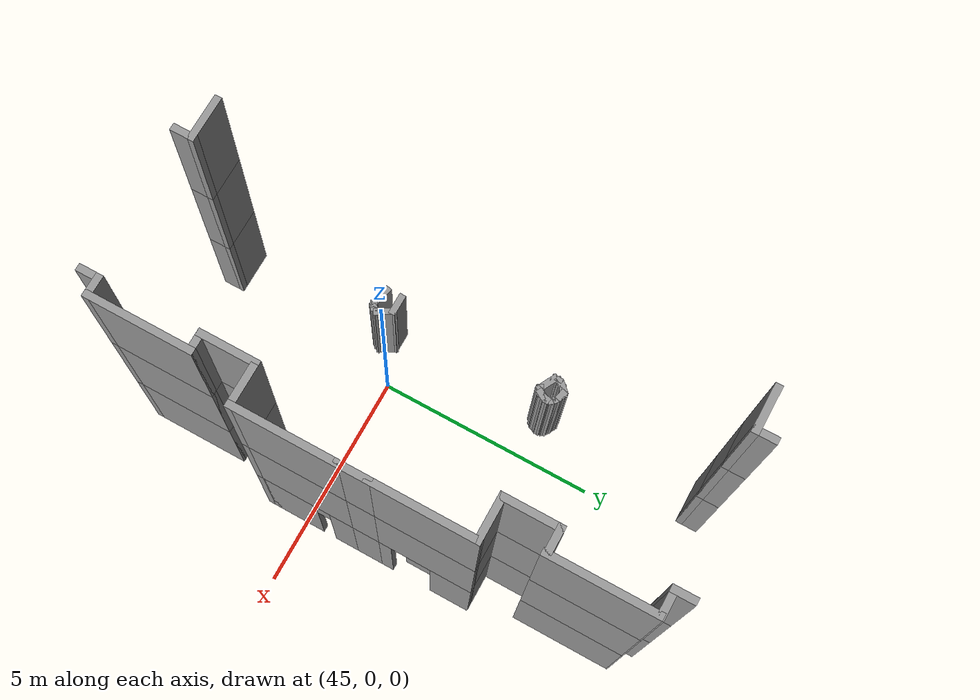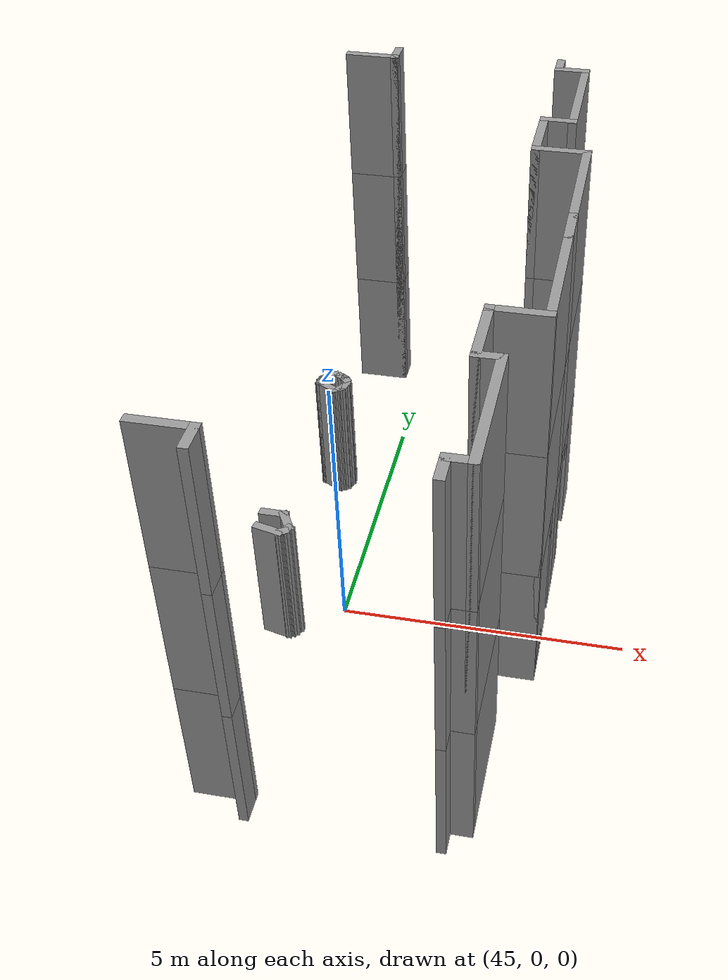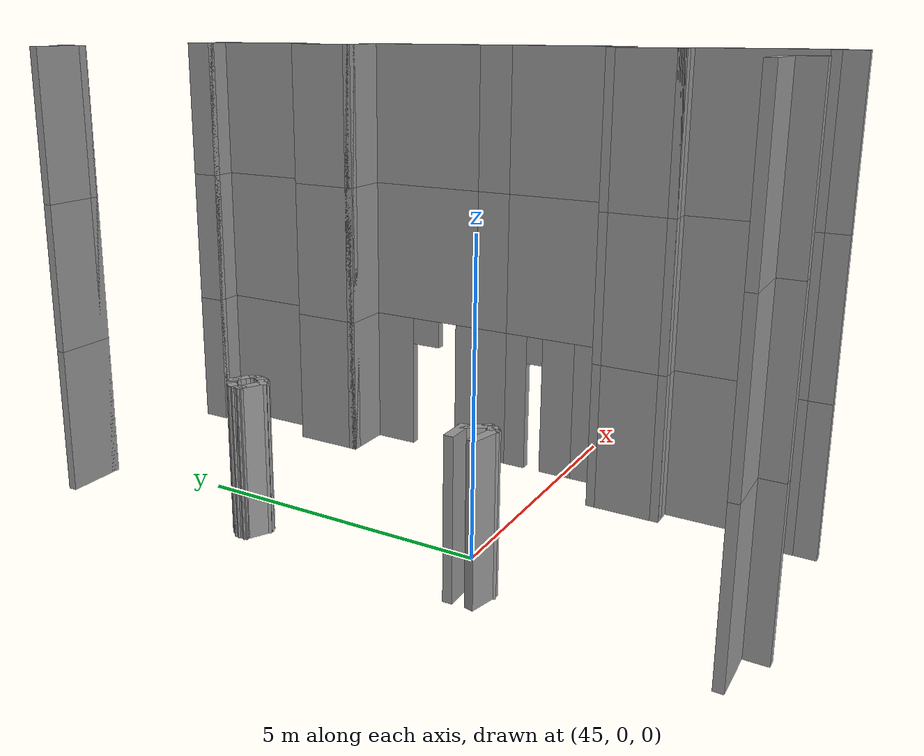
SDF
<sdf version="1.7">
 <model name="mapagazebo">
  <pose>-4.67869 9.01252 0 0 -0 0</pose>
  <link name="Wall_1187">
   <collision name="Wall_1187_Collision">
    <geometry><box><size>1 0.15 2.5</size></box></geometry>
    <pose>0 0 1.25 0 -0 0</pose>
   </collision>
   <visual name="Wall_1187_Visual">
    <pose>0 0 1.25 0 -0 0</pose>
    <geometry><box><size>1 0.15 2.5</size></box></geometry>
    <material>
     <script><uri>file://media/materials/scripts/gazebo.material</uri><name>Gazebo/Grey</name></script>
     <ambient>1 1 1 1</ambient>
    </material>
    <meta><layer>1</layer></meta>
   </visual>
   <pose>48.7962 -1.8985 2.5 0 -0 0</pose>
  </link>
  <link name="Wall_1188">
   <collision name="Wall_1188_Collision">
    <geometry><box><size>0.5 0.15 2.5</size></box></geometry>
    <pose>0 0 1.25 0 -0 0</pose>
   </collision>
   <visual name="Wall_1188_Visual">
    <pose>0 0 1.25 0 -0 0</pose>
    <geometry><box><size>0.5 0.15 2.5</size></box></geometry>
    <material>
     <script><uri>file://media/materials/scripts/gazebo.material</uri><name>Gazebo/Grey</name></script>
     <ambient>1 1 1 1</ambient>
    </material>
    <meta><layer>1</layer></meta>
   </visual>
   <pose>49.2212 -1.7235 2.5 0 -0 1.5708</pose>
  </link>
  <link name="Wall_1190">
   <collision name="Wall_1190_Collision">
    <geometry><box><size>0.5 0.15 2.5</size></box></geometry>
    <pose>0 0 1.25 0 -0 0</pose>
   </collision>
   <visual name="Wall_1190_Visual">
    <pose>0 0 1.25 0 -0 0</pose>
    <geometry><box><size>0.5 0.15 2.5</size></box></geometry>
    <material>
     <script><uri>file://media/materials/scripts/gazebo.material</uri><name>Gazebo/Grey</name></script>
     <ambient>1 1 1 1</ambient>
    </material>
    <meta><layer>1</layer></meta>
   </visual>
   <pose>52.3212 -1.7235 2.5 0 -0 -1.5708</pose>
  </link>
  <link name="Wall_1191">
   <collision name="Wall_1191_Collision">
    <geometry><box><size>0.642964 0.15 2.5</size></box></geometry>
    <pose>0 0 1.25 0 -0 0</pose>
   </collision>
   <visual name="Wall_1191_Visual">
    <pose>0 0 1.25 0 -0 0</pose>
    <geometry><box><size>0.642964 0.15 2.5</size></box></geometry>
    <material>
     <script><uri>file://media/materials/scripts/gazebo.material</uri><name>Gazebo/Grey</name></script>
     <ambient>1 1 1 1</ambient>
    </material>
    <meta><layer>1</layer></meta>
   </visual>
   <pose>52.5677 -1.8985 2.5 0 -0 0</pose>
  </link>
  <link name="Wall_1192">
   <collision name="Wall_1192_Collision">
    <geometry><box><size>2.25 0.15 2.5</size></box></geometry>
    <pose>0 0 1.25 0 -0 0</pose>
   </collision>
   <visual name="Wall_1192_Visual">
    <pose>0 0 1.25 0 -0 0</pose>
    <geometry><box><size>2.25 0.15 2.5</size></box></geometry>
    <material>
     <script><uri>file://media/materials/scripts/gazebo.material</uri><name>Gazebo/Grey</name></script>
     <ambient>1 1 1 1</ambient>
    </material>
    <meta><layer>1</layer></meta>
   </visual>
   <pose>52.8142 -2.97233 2.5 0 -0 -1.5708</pose>
  </link>
  <link name="Wall_1193">
   <collision name="Wall_1193_Collision">
    <geometry><box><size>0.642964 0.15 2.5</size></box></geometry>
    <pose>0 0 1.25 0 -0 0</pose>
   </collision>
   <visual name="Wall_1193_Visual">
    <pose>0 0 1.25 0 -0 0</pose>
    <geometry><box><size>0.642964 0.15 2.5</size></box></geometry>
    <material>
     <script><uri>file://media/materials/scripts/gazebo.material</uri><name>Gazebo/Grey</name></script>
     <ambient>1 1 1 1</ambient>
    </material>
    <meta><layer>1</layer></meta>
   </visual>
   <pose>52.5677 -3.9985 2.5 0 -0 3.14159</pose>
  </link>
  <link name="Wall_1194">
   <collision name="Wall_1194_Collision">
    <geometry><box><size>1.25 0.15 2.5</size></box></geometry>
    <pose>0 0 1.25 0 -0 0</pose>
   </collision>
   <visual name="Wall_1194_Visual">
    <pose>0 0 1.25 0 -0 0</pose>
    <geometry><box><size>1.25 0.15 2.5</size></box></geometry>
    <material>
     <script><uri>file://media/materials/scripts/gazebo.material</uri><name>Gazebo/Grey</name></script>
     <ambient>1 1 1 1</ambient>
    </material>
    <meta><layer>1</layer></meta>
   </visual>
   <pose>52.3212 -4.5485 2.5 0 -0 -1.5708</pose>
  </link>
  <link name="Wall_1195">
   <collision name="Wall_1195_Collision">
    <geometry><box><size>1 0.15 2.5</size></box></geometry>
    <pose>0 0 1.25 0 -0 0</pose>
   </collision>
   <visual name="Wall_1195_Visual">
    <pose>0 0 1.25 0 -0 0</pose>
    <geometry><box><size>1 0.15 2.5</size></box></geometry>
    <material>
     <script><uri>file://media/materials/scripts/gazebo.material</uri><name>Gazebo/Grey</name></script>
     <ambient>1 1 1 1</ambient>
    </material>
    <meta><layer>1</layer></meta>
   </visual>
   <pose>52.7462 -5.0985 2.5 0 -0 0</pose>
  </link>
  <link name="Wall_1196">
   <collision name="Wall_1196_Collision">
    <geometry><box><size>2.25 0.15 2.5</size></box></geometry>
    <pose>0 0 1.25 0 -0 0</pose>
   </collision>
   <visual name="Wall_1196_Visual">
    <pose>0 0 1.25 0 -0 0</pose>
    <geometry><box><size>2.25 0.15 2.5</size></box></geometry>
    <material>
     <script><uri>file://media/materials/scripts/gazebo.material</uri><name>Gazebo/Grey</name></script>
     <ambient>1 1 1 1</ambient>
    </material>
    <meta><layer>1</layer></meta>
   </visual>
   <pose>53.1712 -6.1485 2.5 0 -0 -1.5708</pose>
  </link>
  <link name="Wall_1197">
   <collision name="Wall_1197_Collision">
    <geometry><box><size>0.75 0.15 2.5</size></box></geometry>
    <pose>0 0 1.25 0 -0 0</pose>
   </collision>
   <visual name="Wall_1197_Visual">
    <pose>0 0 1.25 0 -0 0</pose>
    <geometry><box><size>0.75 0.15 2.5</size></box></geometry>
    <material>
     <script><uri>file://media/materials/scripts/gazebo.material</uri><name>Gazebo/Grey</name></script>
     <ambient>1 1 1 1</ambient>
    </material>
    <meta><layer>1</layer></meta>
   </visual>
   <pose>53.1712 -7.4985 2.5 0 -0 -1.5708</pose>
  </link>
  <link name="Wall_1198">
   <collision name="Wall_1198_Collision">
    <geometry><box><size>2.25 0.15 2.5</size></box></geometry>
    <pose>0 0 1.25 0 -0 0</pose>
   </collision>
   <visual name="Wall_1198_Visual">
    <pose>0 0 1.25 0 -0 0</pose>
    <geometry><box><size>2.25 0.15 2.5</size></box></geometry>
    <material>
     <script><uri>file://media/materials/scripts/gazebo.material</uri><name>Gazebo/Grey</name></script>
     <ambient>1 1 1 1</ambient>
    </material>
    <meta><layer>1</layer></meta>
   </visual>
   <pose>53.1712 -8.8485 2.5 0 -0 -1.5708</pose>
  </link>
  <link name="Wall_1199">
   <collision name="Wall_1199_Collision">
    <geometry><box><size>1 0.15 2.5</size></box></geometry>
    <pose>0 0 1.25 0 -0 0</pose>
   </collision>
   <visual name="Wall_1199_Visual">
    <pose>0 0 1.25 0 -0 0</pose>
    <geometry><box><size>1 0.15 2.5</size></box></geometry>
    <material>
     <script><uri>file://media/materials/scripts/gazebo.material</uri><name>Gazebo/Grey</name></script>
     <ambient>1 1 1 1</ambient>
    </material>
    <meta><layer>1</layer></meta>
   </visual>
   <pose>52.7462 -9.8985 2.5 0 -0 3.14159</pose>
  </link>
  <link name="Wall_1200">
   <collision name="Wall_1200_Collision">
    <geometry><box><size>1.25 0.15 2.5</size></box></geometry>
    <pose>0 0 1.25 0 -0 0</pose>
   </collision>
   <visual name="Wall_1200_Visual">
    <pose>0 0 1.25 0 -0 0</pose>
    <geometry><box><size>1.25 0.15 2.5</size></box></geometry>
    <material>
     <script><uri>file://media/materials/scripts/gazebo.material</uri><name>Gazebo/Grey</name></script>
     <ambient>1 1 1 1</ambient>
    </material>
    <meta><layer>1</layer></meta>
   </visual>
   <pose>52.3212 -10.4485 2.5 0 -0 -1.5708</pose>
  </link>
  <link name="Wall_1201">
   <collision name="Wall_1201_Collision">
    <geometry><box><size>0.5 0.15 2.5</size></box></geometry>
    <pose>0 0 1.25 0 -0 0</pose>
   </collision>
   <visual name="Wall_1201_Visual">
    <pose>0 0 1.25 0 -0 0</pose>
    <geometry><box><size>0.5 0.15 2.5</size></box></geometry>
    <material>
     <script><uri>file://media/materials/scripts/gazebo.material</uri><name>Gazebo/Grey</name></script>
     <ambient>1 1 1 1</ambient>
    </material>
    <meta><layer>1</layer></meta>
   </visual>
   <pose>52.4962 -10.9985 2.5 0 -0 0</pose>
  </link>
  <link name="Wall_1202">
   <collision name="Wall_1202_Collision">
    <geometry><box><size>2.25 0.15 2.5</size></box></geometry>
    <pose>0 0 1.25 0 -0 0</pose>
   </collision>
   <visual name="Wall_1202_Visual">
    <pose>0 0 1.25 0 -0 0</pose>
    <geometry><box><size>2.25 0.15 2.5</size></box></geometry>
    <material>
     <script><uri>file://media/materials/scripts/gazebo.material</uri><name>Gazebo/Grey</name></script>
     <ambient>1 1 1 1</ambient>
    </material>
    <meta><layer>1</layer></meta>
   </visual>
   <pose>52.6712 -12.0485 2.5 0 -0 -1.5708</pose>
  </link>
  <link name="Wall_1203">
   <collision name="Wall_1203_Collision">
    <geometry><box><size>0.5 0.15 2.5</size></box></geometry>
    <pose>0 0 1.25 0 -0 0</pose>
   </collision>
   <visual name="Wall_1203_Visual">
    <pose>0 0 1.25 0 -0 0</pose>
    <geometry><box><size>0.5 0.15 2.5</size></box></geometry>
    <material>
     <script><uri>file://media/materials/scripts/gazebo.material</uri><name>Gazebo/Grey</name></script>
     <ambient>1 1 1 1</ambient>
    </material>
    <meta><layer>1</layer></meta>
   </visual>
   <pose>52.4962 -13.0985 2.5 0 -0 3.14159</pose>
  </link>
  <link name="Wall_1204">
   <collision name="Wall_1204_Collision">
    <geometry><box><size>0.5 0.15 2.5</size></box></geometry>
    <pose>0 0 1.25 0 -0 0</pose>
   </collision>
   <visual name="Wall_1204_Visual">
    <pose>0 0 1.25 0 -0 0</pose>
    <geometry><box><size>0.5 0.15 2.5</size></box></geometry>
    <material>
     <script><uri>file://media/materials/scripts/gazebo.material</uri><name>Gazebo/Grey</name></script>
     <ambient>1 1 1 1</ambient>
    </material>
    <meta><layer>1</layer></meta>
   </visual>
   <pose>52.3212 -13.2735 2.5 0 -0 -1.5708</pose>
  </link>
  <link name="Wall_1206">
   <collision name="Wall_1206_Collision">
    <geometry><box><size>0.5 0.15 2.5</size></box></geometry>
    <pose>0 0 1.25 0 -0 0</pose>
   </collision>
   <visual name="Wall_1206_Visual">
    <pose>0 0 1.25 0 -0 0</pose>
    <geometry><box><size>0.5 0.15 2.5</size></box></geometry>
    <material>
     <script><uri>file://media/materials/scripts/gazebo.material</uri><name>Gazebo/Grey</name></script>
     <ambient>1 1 1 1</ambient>
    </material>
    <meta><layer>1</layer></meta>
   </visual>
   <pose>49.2212 -13.2735 2.5 0 -0 1.5708</pose>
  </link>
  <link name="Wall_1207">
   <collision name="Wall_1207_Collision">
    <geometry><box><size>1 0.15 2.5</size></box></geometry>
    <pose>0 0 1.25 0 -0 0</pose>
   </collision>
   <visual name="Wall_1207_Visual">
    <pose>0 0 1.25 0 -0 0</pose>
    <geometry><box><size>1 0.15 2.5</size></box></geometry>
    <material>
     <script><uri>file://media/materials/scripts/gazebo.material</uri><name>Gazebo/Grey</name></script>
     <ambient>1 1 1 1</ambient>
    </material>
    <meta><layer>1</layer></meta>
   </visual>
   <pose>48.7962 -13.0985 2.5 0 -0 3.14159</pose>
  </link>
  <link name="Wall_1811">
   <collision name="Wall_1811_Collision">
    <geometry><box><size>1 0.15 2.5</size></box></geometry>
    <pose>0 0 1.25 0 -0 0</pose>
   </collision>
   <visual name="Wall_1811_Visual">
    <pose>0 0 1.25 0 -0 0</pose>
    <geometry><box><size>1 0.15 2.5</size></box></geometry>
    <material>
     <script><uri>file://media/materials/scripts/gazebo.material</uri><name>Gazebo/Grey</name></script>
     <ambient>1 1 1 1</ambient>
    </material>
    <meta><layer>2</layer></meta>
   </visual>
   <pose>48.7962 -1.8985 5 0 -0 0</pose>
  </link>
  <link name="Wall_1812">
   <collision name="Wall_1812_Collision">
    <geometry><box><size>0.5 0.15 2.5</size></box></geometry>
    <pose>0 0 1.25 0 -0 0</pose>
   </collision>
   <visual name="Wall_1812_Visual">
    <pose>0 0 1.25 0 -0 0</pose>
    <geometry><box><size>0.5 0.15 2.5</size></box></geometry>
    <material>
     <script><uri>file://media/materials/scripts/gazebo.material</uri><name>Gazebo/Grey</name></script>
     <ambient>1 1 1 1</ambient>
    </material>
    <meta><layer>2</layer></meta>
   </visual>
   <pose>49.2212 -1.7235 5 0 -0 1.5708</pose>
  </link>
  <link name="Wall_1814">
   <collision name="Wall_1814_Collision">
    <geometry><box><size>0.5 0.15 2.5</size></box></geometry>
    <pose>0 0 1.25 0 -0 0</pose>
   </collision>
   <visual name="Wall_1814_Visual">
    <pose>0 0 1.25 0 -0 0</pose>
    <geometry><box><size>0.5 0.15 2.5</size></box></geometry>
    <material>
     <script><uri>file://media/materials/scripts/gazebo.material</uri><name>Gazebo/Grey</name></script>
     <ambient>1 1 1 1</ambient>
    </material>
    <meta><layer>2</layer></meta>
   </visual>
   <pose>52.3212 -1.7235 5 0 -0 -1.5708</pose>
  </link>
  <link name="Wall_1815">
   <collision name="Wall_1815_Collision">
    <geometry><box><size>0.642964 0.15 2.5</size></box></geometry>
    <pose>0 0 1.25 0 -0 0</pose>
   </collision>
   <visual name="Wall_1815_Visual">
    <pose>0 0 1.25 0 -0 0</pose>
    <geometry><box><size>0.642964 0.15 2.5</size></box></geometry>
    <material>
     <script><uri>file://media/materials/scripts/gazebo.material</uri><name>Gazebo/Grey</name></script>
     <ambient>1 1 1 1</ambient>
    </material>
    <meta><layer>2</layer></meta>
   </visual>
   <pose>52.5677 -1.8985 5 0 -0 0</pose>
  </link>
  <link name="Wall_1816">
   <collision name="Wall_1816_Collision">
    <geometry><box><size>2.25 0.15 2.5</size></box></geometry>
    <pose>0 0 1.25 0 -0 0</pose>
   </collision>
   <visual name="Wall_1816_Visual">
    <pose>0 0 1.25 0 -0 0</pose>
    <geometry><box><size>2.25 0.15 2.5</size></box></geometry>
    <material>
     <script><uri>file://media/materials/scripts/gazebo.material</uri><name>Gazebo/Grey</name></script>
     <ambient>1 1 1 1</ambient>
    </material>
    <meta><layer>2</layer></meta>
   </visual>
   <pose>52.8142 -2.97233 5 0 -0 -1.5708</pose>
  </link>
  <link name="Wall_1817">
   <collision name="Wall_1817_Collision">
    <geometry><box><size>0.642964 0.15 2.5</size></box></geometry>
    <pose>0 0 1.25 0 -0 0</pose>
   </collision>
   <visual name="Wall_1817_Visual">
    <pose>0 0 1.25 0 -0 0</pose>
    <geometry><box><size>0.642964 0.15 2.5</size></box></geometry>
    <material>
     <script><uri>file://media/materials/scripts/gazebo.material</uri><name>Gazebo/Grey</name></script>
     <ambient>1 1 1 1</ambient>
    </material>
    <meta><layer>2</layer></meta>
   </visual>
   <pose>52.5677 -3.9985 5 0 -0 3.14159</pose>
  </link>
  <link name="Wall_1818">
   <collision name="Wall_1818_Collision">
    <geometry><box><size>1.25 0.15 2.5</size></box></geometry>
    <pose>0 0 1.25 0 -0 0</pose>
   </collision>
   <visual name="Wall_1818_Visual">
    <pose>0 0 1.25 0 -0 0</pose>
    <geometry><box><size>1.25 0.15 2.5</size></box></geometry>
    <material>
     <script><uri>file://media/materials/scripts/gazebo.material</uri><name>Gazebo/Grey</name></script>
     <ambient>1 1 1 1</ambient>
    </material>
    <meta><layer>2</layer></meta>
   </visual>
   <pose>52.3212 -4.5485 5 0 -0 -1.5708</pose>
  </link>
  <link name="Wall_1819">
   <collision name="Wall_1819_Collision">
    <geometry><box><size>1 0.15 2.5</size></box></geometry>
    <pose>0 0 1.25 0 -0 0</pose>
   </collision>
   <visual name="Wall_1819_Visual">
    <pose>0 0 1.25 0 -0 0</pose>
    <geometry><box><size>1 0.15 2.5</size></box></geometry>
    <material>
     <script><uri>file://media/materials/scripts/gazebo.material</uri><name>Gazebo/Grey</name></script>
     <ambient>1 1 1 1</ambient>
    </material>
    <meta><layer>2</layer></meta>
   </visual>
   <pose>52.7462 -5.0985 5 0 -0 0</pose>
  </link>
  <link name="Wall_1820">
   <collision name="Wall_1820_Collision">
    <geometry><box><size>2.25 0.15 2.5</size></box></geometry>
    <pose>0 0 1.25 0 -0 0</pose>
   </collision>
   <visual name="Wall_1820_Visual">
    <pose>0 0 1.25 0 -0 0</pose>
    <geometry><box><size>2.25 0.15 2.5</size></box></geometry>
    <material>
     <script><uri>file://media/materials/scripts/gazebo.material</uri><name>Gazebo/Grey</name></script>
     <ambient>1 1 1 1</ambient>
    </material>
    <meta><layer>2</layer></meta>
   </visual>
   <pose>53.1712 -6.1485 5 0 -0 -1.5708</pose>
  </link>
  <link name="Wall_1821">
   <collision name="Wall_1821_Collision">
    <geometry><box><size>0.75 0.15 2.5</size></box></geometry>
    <pose>0 0 1.25 0 -0 0</pose>
   </collision>
   <visual name="Wall_1821_Visual">
    <pose>0 0 1.25 0 -0 0</pose>
    <geometry><box><size>0.75 0.15 2.5</size></box></geometry>
    <material>
     <script><uri>file://media/materials/scripts/gazebo.material</uri><name>Gazebo/Grey</name></script>
     <ambient>1 1 1 1</ambient>
    </material>
    <meta><layer>2</layer></meta>
   </visual>
   <pose>53.1712 -7.4985 5 0 -0 -1.5708</pose>
  </link>
  <link name="Wall_1822">
   <collision name="Wall_1822_Collision">
    <geometry><box><size>2.25 0.15 2.5</size></box></geometry>
    <pose>0 0 1.25 0 -0 0</pose>
   </collision>
   <visual name="Wall_1822_Visual">
    <pose>0 0 1.25 0 -0 0</pose>
    <geometry><box><size>2.25 0.15 2.5</size></box></geometry>
    <material>
     <script><uri>file://media/materials/scripts/gazebo.material</uri><name>Gazebo/Grey</name></script>
     <ambient>1 1 1 1</ambient>
    </material>
    <meta><layer>2</layer></meta>
   </visual>
   <pose>53.1712 -8.8485 5 0 -0 -1.5708</pose>
  </link>
  <link name="Wall_1823">
   <collision name="Wall_1823_Collision">
    <geometry><box><size>1 0.15 2.5</size></box></geometry>
    <pose>0 0 1.25 0 -0 0</pose>
   </collision>
   <visual name="Wall_1823_Visual">
    <pose>0 0 1.25 0 -0 0</pose>
    <geometry><box><size>1 0.15 2.5</size></box></geometry>
    <material>
     <script><uri>file://media/materials/scripts/gazebo.material</uri><name>Gazebo/Grey</name></script>
     <ambient>1 1 1 1</ambient>
    </material>
    <meta><layer>2</layer></meta>
   </visual>
   <pose>52.7462 -9.8985 5 0 -0 3.14159</pose>
  </link>
  <link name="Wall_1824">
   <collision name="Wall_1824_Collision">
    <geometry><box><size>1.25 0.15 2.5</size></box></geometry>
    <pose>0 0 1.25 0 -0 0</pose>
   </collision>
   <visual name="Wall_1824_Visual">
    <pose>0 0 1.25 0 -0 0</pose>
    <geometry><box><size>1.25 0.15 2.5</size></box></geometry>
    <material>
     <script><uri>file://media/materials/scripts/gazebo.material</uri><name>Gazebo/Grey</name></script>
     <ambient>1 1 1 1</ambient>
    </material>
    <meta><layer>2</layer></meta>
   </visual>
   <pose>52.3212 -10.4485 5 0 -0 -1.5708</pose>
  </link>
  <link name="Wall_1825">
   <collision name="Wall_1825_Collision">
    <geometry><box><size>0.5 0.15 2.5</size></box></geometry>
    <pose>0 0 1.25 0 -0 0</pose>
   </collision>
   <visual name="Wall_1825_Visual">
    <pose>0 0 1.25 0 -0 0</pose>
    <geometry><box><size>0.5 0.15 2.5</size></box></geometry>
    <material>
     <script><uri>file://media/materials/scripts/gazebo.material</uri><name>Gazebo/Grey</name></script>
     <ambient>1 1 1 1</ambient>
    </material>
    <meta><layer>2</layer></meta>
   </visual>
   <pose>52.4962 -10.9985 5 0 -0 0</pose>
  </link>
  <link name="Wall_1826">
   <collision name="Wall_1826_Collision">
    <geometry><box><size>2.25 0.15 2.5</size></box></geometry>
    <pose>0 0 1.25 0 -0 0</pose>
   </collision>
   <visual name="Wall_1826_Visual">
    <pose>0 0 1.25 0 -0 0</pose>
    <geometry><box><size>2.25 0.15 2.5</size></box></geometry>
    <material>
     <script><uri>file://media/materials/scripts/gazebo.material</uri><name>Gazebo/Grey</name></script>
     <ambient>1 1 1 1</ambient>
    </material>
    <meta><layer>2</layer></meta>
   </visual>
   <pose>52.6712 -12.0485 5 0 -0 -1.5708</pose>
  </link>
  <link name="Wall_1827">
   <collision name="Wall_1827_Collision">
    <geometry><box><size>0.5 0.15 2.5</size></box></geometry>
    <pose>0 0 1.25 0 -0 0</pose>
   </collision>
   <visual name="Wall_1827_Visual">
    <pose>0 0 1.25 0 -0 0</pose>
    <geometry><box><size>0.5 0.15 2.5</size></box></geometry>
    <material>
     <script><uri>file://media/materials/scripts/gazebo.material</uri><name>Gazebo/Grey</name></script>
     <ambient>1 1 1 1</ambient>
    </material>
    <meta><layer>2</layer></meta>
   </visual>
   <pose>52.4962 -13.0985 5 0 -0 3.14159</pose>
  </link>
  <link name="Wall_1828">
   <collision name="Wall_1828_Collision">
    <geometry><box><size>0.5 0.15 2.5</size></box></geometry>
    <pose>0 0 1.25 0 -0 0</pose>
   </collision>
   <visual name="Wall_1828_Visual">
    <pose>0 0 1.25 0 -0 0</pose>
    <geometry><box><size>0.5 0.15 2.5</size></box></geometry>
    <material>
     <script><uri>file://media/materials/scripts/gazebo.material</uri><name>Gazebo/Grey</name></script>
     <ambient>1 1 1 1</ambient>
    </material>
    <meta><layer>2</layer></meta>
   </visual>
   <pose>52.3212 -13.2735 5 0 -0 -1.5708</pose>
  </link>
  <link name="Wall_1830">
   <collision name="Wall_1830_Collision">
    <geometry><box><size>0.5 0.15 2.5</size></box></geometry>
    <pose>0 0 1.25 0 -0 0</pose>
   </collision>
   <visual name="Wall_1830_Visual">
    <pose>0 0 1.25 0 -0 0</pose>
    <geometry><box><size>0.5 0.15 2.5</size></box></geometry>
    <material>
     <script><uri>file://media/materials/scripts/gazebo.material</uri><name>Gazebo/Grey</name></script>
     <ambient>1 1 1 1</ambient>
    </material>
    <meta><layer>2</layer></meta>
   </visual>
   <pose>49.2212 -13.2735 5 0 -0 1.5708</pose>
  </link>
  <link name="Wall_1831">
   <collision name="Wall_1831_Collision">
    <geometry><box><size>1 0.15 2.5</size></box></geometry>
    <pose>0 0 1.25 0 -0 0</pose>
   </collision>
   <visual name="Wall_1831_Visual">
    <pose>0 0 1.25 0 -0 0</pose>
    <geometry><box><size>1 0.15 2.5</size></box></geometry>
    <material>
     <script><uri>file://media/materials/scripts/gazebo.material</uri><name>Gazebo/Grey</name></script>
     <ambient>1 1 1 1</ambient>
    </material>
    <meta><layer>2</layer></meta>
   </visual>
   <pose>48.7962 -13.0985 5 0 -0 3.14159</pose>
  </link>
  <link name="Wall_2031">
   <collision name="Wall_2031_Collision">
    <geometry><box><size>0.5 0.15 2.5</size></box></geometry>
    <pose>0 0 1.25 0 -0 0</pose>
   </collision>
   <visual name="Wall_2031_Visual">
    <pose>0 0 1.25 0 -0 0</pose>
    <geometry><box><size>0.5 0.15 2.5</size></box></geometry>
    <material>
     <script><uri>file://media/materials/scripts/gazebo.material</uri><name>Gazebo/Grey</name></script>
     <ambient>1 1 1 1</ambient>
    </material>
    <meta><layer>0</layer></meta>
   </visual>
   <pose>48.6455 -9.29594 0 0 -0 0</pose>
  </link>
  <link name="Wall_2032">
   <collision name="Wall_2032_Collision">
    <geometry><box><size>0.5 0.15 2.5</size></box></geometry>
    <pose>0 0 1.25 0 -0 0</pose>
   </collision>
   <visual name="Wall_2032_Visual">
    <pose>0 0 1.25 0 -0 0</pose>
    <geometry><box><size>0.5 0.15 2.5</size></box></geometry>
    <material>
     <script><uri>file://media/materials/scripts/gazebo.material</uri><name>Gazebo/Grey</name></script>
     <ambient>1 1 1 1</ambient>
    </material>
    <meta><layer>0</layer></meta>
   </visual>
   <pose>48.908 -9.4475 0 0 -0 -1.0472</pose>
  </link>
  <link name="Wall_2033">
   <collision name="Wall_2033_Collision">
    <geometry><box><size>0.25 0.15 2.5</size></box></geometry>
    <pose>0 0 1.25 0 -0 0</pose>
   </collision>
   <visual name="Wall_2033_Visual">
    <pose>0 0 1.25 0 -0 0</pose>
    <geometry><box><size>0.25 0.15 2.5</size></box></geometry>
    <material>
     <script><uri>file://media/materials/scripts/gazebo.material</uri><name>Gazebo/Grey</name></script>
     <ambient>1 1 1 1</ambient>
    </material>
    <meta><layer>0</layer></meta>
   </visual>
   <pose>48.9705 -9.64235 0 0 -0 -2.0944</pose>
  </link>
  <link name="Wall_2034">
   <collision name="Wall_2034_Collision">
    <geometry><box><size>0.25 0.15 2.5</size></box></geometry>
    <pose>0 0 1.25 0 -0 0</pose>
   </collision>
   <visual name="Wall_2034_Visual">
    <pose>0 0 1.25 0 -0 0</pose>
    <geometry><box><size>0.25 0.15 2.5</size></box></geometry>
    <material>
     <script><uri>file://media/materials/scripts/gazebo.material</uri><name>Gazebo/Grey</name></script>
     <ambient>1 1 1 1</ambient>
    </material>
    <meta><layer>0</layer></meta>
   </visual>
   <pose>48.9022 -9.71065 0 0 -0 -2.61799</pose>
  </link>
  <link name="Wall_2035">
   <collision name="Wall_2035_Collision">
    <geometry><box><size>0.548624 0.15 2.5</size></box></geometry>
    <pose>0 0 1.25 0 -0 0</pose>
   </collision>
   <visual name="Wall_2035_Visual">
    <pose>0 0 1.25 0 -0 0</pose>
    <geometry><box><size>0.548624 0.15 2.5</size></box></geometry>
    <material>
     <script><uri>file://media/materials/scripts/gazebo.material</uri><name>Gazebo/Grey</name></script>
     <ambient>1 1 1 1</ambient>
    </material>
    <meta><layer>0</layer></meta>
   </visual>
   <pose>48.6647 -9.6908 0 0 -0 2.91459</pose>
  </link>
  <link name="Wall_2038">
   <collision name="Wall_2038_Collision">
    <geometry><box><size>0.25 0.15 2.5</size></box></geometry>
    <pose>0 0 1.25 0 -0 0</pose>
   </collision>
   <visual name="Wall_2038_Visual">
    <pose>0 0 1.25 0 -0 0</pose>
    <geometry><box><size>0.25 0.15 2.5</size></box></geometry>
    <material>
     <script><uri>file://media/materials/scripts/gazebo.material</uri><name>Gazebo/Grey</name></script>
     <ambient>1 1 1 1</ambient>
    </material>
    <meta><layer>0</layer></meta>
   </visual>
   <pose>48.4767 -5.58649 0 0 -0 1.5708</pose>
  </link>
  <link name="Wall_2039">
   <collision name="Wall_2039_Collision">
    <geometry><box><size>0.15 0.15 2.5</size></box></geometry>
    <pose>0 0 1.25 0 -0 0</pose>
   </collision>
   <visual name="Wall_2039_Visual">
    <pose>0 0 1.25 0 -0 0</pose>
    <geometry><box><size>0.15 0.15 2.5</size></box></geometry>
    <material>
     <script><uri>file://media/materials/scripts/gazebo.material</uri><name>Gazebo/Grey</name></script>
     <ambient>1 1 1 1</ambient>
    </material>
    <meta><layer>0</layer></meta>
   </visual>
   <pose>48.4767 -5.53649 0 0 -0 0</pose>
  </link>
  <link name="Wall_2040">
   <collision name="Wall_2040_Collision">
    <geometry><box><size>0.25 0.15 2.5</size></box></geometry>
    <pose>0 0 1.25 0 -0 0</pose>
   </collision>
   <visual name="Wall_2040_Visual">
    <pose>0 0 1.25 0 -0 0</pose>
    <geometry><box><size>0.25 0.15 2.5</size></box></geometry>
    <material>
     <script><uri>file://media/materials/scripts/gazebo.material</uri><name>Gazebo/Grey</name></script>
     <ambient>1 1 1 1</ambient>
    </material>
    <meta><layer>0</layer></meta>
   </visual>
   <pose>48.5017 -5.49319 0 0 -0 1.0472</pose>
  </link>
  <link name="Wall_2041">
   <collision name="Wall_2041_Collision">
    <geometry><box><size>0.25 0.15 2.5</size></box></geometry>
    <pose>0 0 1.25 0 -0 0</pose>
   </collision>
   <visual name="Wall_2041_Visual">
    <pose>0 0 1.25 0 -0 0</pose>
    <geometry><box><size>0.25 0.15 2.5</size></box></geometry>
    <material>
     <script><uri>file://media/materials/scripts/gazebo.material</uri><name>Gazebo/Grey</name></script>
     <ambient>1 1 1 1</ambient>
    </material>
    <meta><layer>0</layer></meta>
   </visual>
   <pose>48.5621 -5.41453 0 0 -0 0.785398</pose>
  </link>
  <link name="Wall_2042">
   <collision name="Wall_2042_Collision">
    <geometry><box><size>0.25 0.15 2.5</size></box></geometry>
    <pose>0 0 1.25 0 -0 0</pose>
   </collision>
   <visual name="Wall_2042_Visual">
    <pose>0 0 1.25 0 -0 0</pose>
    <geometry><box><size>0.25 0.15 2.5</size></box></geometry>
    <material>
     <script><uri>file://media/materials/scripts/gazebo.material</uri><name>Gazebo/Grey</name></script>
     <ambient>1 1 1 1</ambient>
    </material>
    <meta><layer>0</layer></meta>
   </visual>
   <pose>48.6407 -5.35418 0 0 -0 0.523599</pose>
  </link>
  <link name="Wall_2043">
   <collision name="Wall_2043_Collision">
    <geometry><box><size>0.15 0.15 2.5</size></box></geometry>
    <pose>0 0 1.25 0 -0 0</pose>
   </collision>
   <visual name="Wall_2043_Visual">
    <pose>0 0 1.25 0 -0 0</pose>
    <geometry><box><size>0.15 0.15 2.5</size></box></geometry>
    <material>
     <script><uri>file://media/materials/scripts/gazebo.material</uri><name>Gazebo/Grey</name></script>
     <ambient>1 1 1 1</ambient>
    </material>
    <meta><layer>0</layer></meta>
   </visual>
   <pose>48.684 -5.32918 0 0 -0 0</pose>
  </link>
  <link name="Wall_2044">
   <collision name="Wall_2044_Collision">
    <geometry><box><size>0.25 0.15 2.5</size></box></geometry>
    <pose>0 0 1.25 0 -0 0</pose>
   </collision>
   <visual name="Wall_2044_Visual">
    <pose>0 0 1.25 0 -0 0</pose>
    <geometry><box><size>0.25 0.15 2.5</size></box></geometry>
    <material>
     <script><uri>file://media/materials/scripts/gazebo.material</uri><name>Gazebo/Grey</name></script>
     <ambient>1 1 1 1</ambient>
    </material>
    <meta><layer>0</layer></meta>
   </visual>
   <pose>48.7323 -5.34212 0 0 -0 -0.261799</pose>
  </link>
  <link name="Wall_2045">
   <collision name="Wall_2045_Collision">
    <geometry><box><size>0.25 0.15 2.5</size></box></geometry>
    <pose>0 0 1.25 0 -0 0</pose>
   </collision>
   <visual name="Wall_2045_Visual">
    <pose>0 0 1.25 0 -0 0</pose>
    <geometry><box><size>0.25 0.15 2.5</size></box></geometry>
    <material>
     <script><uri>file://media/materials/scripts/gazebo.material</uri><name>Gazebo/Grey</name></script>
     <ambient>1 1 1 1</ambient>
    </material>
    <meta><layer>0</layer></meta>
   </visual>
   <pose>48.8239 -5.38006 0 0 -0 -0.523599</pose>
  </link>
  <link name="Wall_2046">
   <collision name="Wall_2046_Collision">
    <geometry><box><size>0.25 0.15 2.5</size></box></geometry>
    <pose>0 0 1.25 0 -0 0</pose>
   </collision>
   <visual name="Wall_2046_Visual">
    <pose>0 0 1.25 0 -0 0</pose>
    <geometry><box><size>0.25 0.15 2.5</size></box></geometry>
    <material>
     <script><uri>file://media/materials/scripts/gazebo.material</uri><name>Gazebo/Grey</name></script>
     <ambient>1 1 1 1</ambient>
    </material>
    <meta><layer>0</layer></meta>
   </visual>
   <pose>48.8239 -5.38006 0 0 -0 2.61799</pose>
  </link>
  <link name="Wall_2047">
   <collision name="Wall_2047_Collision">
    <geometry><box><size>0.25 0.15 2.5</size></box></geometry>
    <pose>0 0 1.25 0 -0 0</pose>
   </collision>
   <visual name="Wall_2047_Visual">
    <pose>0 0 1.25 0 -0 0</pose>
    <geometry><box><size>0.25 0.15 2.5</size></box></geometry>
    <material>
     <script><uri>file://media/materials/scripts/gazebo.material</uri><name>Gazebo/Grey</name></script>
     <ambient>1 1 1 1</ambient>
    </material>
    <meta><layer>0</layer></meta>
   </visual>
   <pose>48.8239 -5.38006 0 0 -0 -0.523599</pose>
  </link>
  <link name="Wall_2048">
   <collision name="Wall_2048_Collision">
    <geometry><box><size>0.25 0.15 2.5</size></box></geometry>
    <pose>0 0 1.25 0 -0 0</pose>
   </collision>
   <visual name="Wall_2048_Visual">
    <pose>0 0 1.25 0 -0 0</pose>
    <geometry><box><size>0.25 0.15 2.5</size></box></geometry>
    <material>
     <script><uri>file://media/materials/scripts/gazebo.material</uri><name>Gazebo/Grey</name></script>
     <ambient>1 1 1 1</ambient>
    </material>
    <meta><layer>0</layer></meta>
   </visual>
   <pose>48.9026 -5.44042 0 0 -0 -0.785398</pose>
  </link>
  <link name="Wall_2049">
   <collision name="Wall_2049_Collision">
    <geometry><box><size>0.25 0.15 2.5</size></box></geometry>
    <pose>0 0 1.25 0 -0 0</pose>
   </collision>
   <visual name="Wall_2049_Visual">
    <pose>0 0 1.25 0 -0 0</pose>
    <geometry><box><size>0.25 0.15 2.5</size></box></geometry>
    <material>
     <script><uri>file://media/materials/scripts/gazebo.material</uri><name>Gazebo/Grey</name></script>
     <ambient>1 1 1 1</ambient>
    </material>
    <meta><layer>0</layer></meta>
   </visual>
   <pose>48.9509 -5.52407 0 0 -0 -1.309</pose>
  </link>
  <link name="Wall_2050">
   <collision name="Wall_2050_Collision">
    <geometry><box><size>0.25 0.15 2.5</size></box></geometry>
    <pose>0 0 1.25 0 -0 0</pose>
   </collision>
   <visual name="Wall_2050_Visual">
    <pose>0 0 1.25 0 -0 0</pose>
    <geometry><box><size>0.25 0.15 2.5</size></box></geometry>
    <material>
     <script><uri>file://media/materials/scripts/gazebo.material</uri><name>Gazebo/Grey</name></script>
     <ambient>1 1 1 1</ambient>
    </material>
    <meta><layer>0</layer></meta>
   </visual>
   <pose>48.9509 -5.62066 0 0 -0 -1.8326</pose>
  </link>
  <link name="Wall_2051">
   <collision name="Wall_2051_Collision">
    <geometry><box><size>0.25 0.15 2.5</size></box></geometry>
    <pose>0 0 1.25 0 -0 0</pose>
   </collision>
   <visual name="Wall_2051_Visual">
    <pose>0 0 1.25 0 -0 0</pose>
    <geometry><box><size>0.25 0.15 2.5</size></box></geometry>
    <material>
     <script><uri>file://media/materials/scripts/gazebo.material</uri><name>Gazebo/Grey</name></script>
     <ambient>1 1 1 1</ambient>
    </material>
    <meta><layer>0</layer></meta>
   </visual>
   <pose>48.9129 -5.71226 0 0 -0 -2.0944</pose>
  </link>
  <link name="Wall_2052">
   <collision name="Wall_2052_Collision">
    <geometry><box><size>0.25 0.15 2.5</size></box></geometry>
    <pose>0 0 1.25 0 -0 0</pose>
   </collision>
   <visual name="Wall_2052_Visual">
    <pose>0 0 1.25 0 -0 0</pose>
    <geometry><box><size>0.25 0.15 2.5</size></box></geometry>
    <material>
     <script><uri>file://media/materials/scripts/gazebo.material</uri><name>Gazebo/Grey</name></script>
     <ambient>1 1 1 1</ambient>
    </material>
    <meta><layer>0</layer></meta>
   </visual>
   <pose>48.8446 -5.78056 0 0 -0 -2.61799</pose>
  </link>
  <link name="Wall_2053">
   <collision name="Wall_2053_Collision">
    <geometry><box><size>0.516005 0.15 2.5</size></box></geometry>
    <pose>0 0 1.25 0 -0 0</pose>
   </collision>
   <visual name="Wall_2053_Visual">
    <pose>0 0 1.25 0 -0 0</pose>
    <geometry><box><size>0.516005 0.15 2.5</size></box></geometry>
    <material>
     <script><uri>file://media/materials/scripts/gazebo.material</uri><name>Gazebo/Grey</name></script>
     <ambient>1 1 1 1</ambient>
    </material>
    <meta><layer>0</layer></meta>
   </visual>
   <pose>48.639 -5.72103 0 0 -0 2.66143</pose>
  </link>
  <link name="Wall_2054">
   <collision name="Wall_2054_Collision">
    <geometry><box><size>0.16 0.15 2.5</size></box></geometry>
    <pose>0 0 1.25 0 -0 0</pose>
   </collision>
   <visual name="Wall_2054_Visual">
    <pose>0 0 1.25 0 -0 0</pose>
    <geometry><box><size>0.16 0.15 2.5</size></box></geometry>
    <material>
     <script><uri>file://media/materials/scripts/gazebo.material</uri><name>Gazebo/Grey</name></script>
     <ambient>1 1 1 1</ambient>
    </material>
    <meta><layer>0</layer></meta>
   </visual>
   <pose>48.4817 -5.63649 0 0 -0 0</pose>
  </link>
  <link name="Wall_515">
   <collision name="Wall_515_Collision">
    <geometry><box><size>1 0.15 2.5</size></box></geometry>
    <pose>0 0 1.25 0 -0 0</pose>
   </collision>
   <visual name="Wall_515_Visual">
    <pose>0 0 1.25 0 -0 0</pose>
    <geometry><box><size>1 0.15 2.5</size></box></geometry>
    <material>
     <script><uri>file://media/materials/scripts/gazebo.material</uri><name>Gazebo/Grey</name></script>
     <ambient>1 1 1 1</ambient>
    </material>
    <meta><layer>0</layer></meta>
   </visual>
   <pose>48.7962 -1.8985 0 0 -0 0</pose>
  </link>
  <link name="Wall_516">
   <collision name="Wall_516_Collision">
    <geometry><box><size>0.5 0.15 2.5</size></box></geometry>
    <pose>0 0 1.25 0 -0 0</pose>
   </collision>
   <visual name="Wall_516_Visual">
    <pose>0 0 1.25 0 -0 0</pose>
    <geometry><box><size>0.5 0.15 2.5</size></box></geometry>
    <material>
     <script><uri>file://media/materials/scripts/gazebo.material</uri><name>Gazebo/Grey</name></script>
     <ambient>1 1 1 1</ambient>
    </material>
    <meta><layer>0</layer></meta>
   </visual>
   <pose>49.2212 -1.7235 0 0 -0 1.5708</pose>
  </link>
  <link name="Wall_518">
   <collision name="Wall_518_Collision">
    <geometry><box><size>0.5 0.15 2.5</size></box></geometry>
    <pose>0 0 1.25 0 -0 0</pose>
   </collision>
   <visual name="Wall_518_Visual">
    <pose>0 0 1.25 0 -0 0</pose>
    <geometry><box><size>0.5 0.15 2.5</size></box></geometry>
    <material>
     <script><uri>file://media/materials/scripts/gazebo.material</uri><name>Gazebo/Grey</name></script>
     <ambient>1 1 1 1</ambient>
    </material>
    <meta><layer>0</layer></meta>
   </visual>
   <pose>52.3212 -1.7235 0 0 -0 -1.5708</pose>
  </link>
  <link name="Wall_519">
   <collision name="Wall_519_Collision">
    <geometry><box><size>0.642964 0.15 2.5</size></box></geometry>
    <pose>0 0 1.25 0 -0 0</pose>
   </collision>
   <visual name="Wall_519_Visual">
    <pose>0 0 1.25 0 -0 0</pose>
    <geometry><box><size>0.642964 0.15 2.5</size></box></geometry>
    <material>
     <script><uri>file://media/materials/scripts/gazebo.material</uri><name>Gazebo/Grey</name></script>
     <ambient>1 1 1 1</ambient>
    </material>
    <meta><layer>0</layer></meta>
   </visual>
   <pose>52.5677 -1.8985 0 0 -0 0</pose>
  </link>
  <link name="Wall_521">
   <collision name="Wall_521_Collision">
    <geometry><box><size>2.25 0.15 2.5</size></box></geometry>
    <pose>0 0 1.25 0 -0 0</pose>
   </collision>
   <visual name="Wall_521_Visual">
    <pose>0 0 1.25 0 -0 0</pose>
    <geometry><box><size>2.25 0.15 2.5</size></box></geometry>
    <material>
     <script><uri>file://media/materials/scripts/gazebo.material</uri><name>Gazebo/Grey</name></script>
     <ambient>1 1 1 1</ambient>
    </material>
    <meta><layer>0</layer></meta>
   </visual>
   <pose>52.8142 -2.97233 0 0 -0 -1.5708</pose>
  </link>
  <link name="Wall_522">
   <collision name="Wall_522_Collision">
    <geometry><box><size>0.642964 0.15 2.5</size></box></geometry>
    <pose>0 0 1.25 0 -0 0</pose>
   </collision>
   <visual name="Wall_522_Visual">
    <pose>0 0 1.25 0 -0 0</pose>
    <geometry><box><size>0.642964 0.15 2.5</size></box></geometry>
    <material>
     <script><uri>file://media/materials/scripts/gazebo.material</uri><name>Gazebo/Grey</name></script>
     <ambient>1 1 1 1</ambient>
    </material>
    <meta><layer>0</layer></meta>
   </visual>
   <pose>52.5677 -3.9985 0 0 -0 3.14159</pose>
  </link>
  <link name="Wall_525">
   <collision name="Wall_525_Collision">
    <geometry><box><size>1.25 0.15 2.5</size></box></geometry>
    <pose>0 0 1.25 0 -0 0</pose>
   </collision>
   <visual name="Wall_525_Visual">
    <pose>0 0 1.25 0 -0 0</pose>
    <geometry><box><size>1.25 0.15 2.5</size></box></geometry>
    <material>
     <script><uri>file://media/materials/scripts/gazebo.material</uri><name>Gazebo/Grey</name></script>
     <ambient>1 1 1 1</ambient>
    </material>
    <meta><layer>0</layer></meta>
   </visual>
   <pose>52.3212 -4.5485 0 0 -0 -1.5708</pose>
  </link>
  <link name="Wall_526">
   <collision name="Wall_526_Collision">
    <geometry><box><size>1 0.15 2.5</size></box></geometry>
    <pose>0 0 1.25 0 -0 0</pose>
   </collision>
   <visual name="Wall_526_Visual">
    <pose>0 0 1.25 0 -0 0</pose>
    <geometry><box><size>1 0.15 2.5</size></box></geometry>
    <material>
     <script><uri>file://media/materials/scripts/gazebo.material</uri><name>Gazebo/Grey</name></script>
     <ambient>1 1 1 1</ambient>
    </material>
    <meta><layer>0</layer></meta>
   </visual>
   <pose>52.7462 -5.0985 0 0 -0 0</pose>
  </link>
  <link name="Wall_527">
   <pose>53.1712 -6.1485 0 0 -0 -1.5708</pose>
   <visual name="Wall_527_Visual_0">
    <pose>-0.66403 0 1.25 0 -0 0</pose>
    <geometry><box><size>0.92194 0.15 2.5</size></box></geometry>
    <material>
     <script><uri>file://media/materials/scripts/gazebo.material</uri><name>Gazebo/Grey</name></script>
     <ambient>1 1 1 1</ambient>
    </material>
    <meta><layer>0</layer></meta>
   </visual>
   <collision name="Wall_527_Collision_0">
    <geometry><box><size>0.92194 0.15 2.5</size></box></geometry>
    <pose>-0.66403 0 1.25 0 -0 0</pose>
   </collision>
   <visual name="Wall_527_Visual_1">
    <pose>0.91097 0 1.25 0 -0 0</pose>
    <geometry><box><size>0.42806 0.15 2.5</size></box></geometry>
    <material>
     <script><uri>file://media/materials/scripts/gazebo.material</uri><name>Gazebo/Grey</name></script>
     <ambient>1 1 1 1</ambient>
    </material>
    <meta><layer>0</layer></meta>
   </visual>
   <collision name="Wall_527_Collision_1">
    <geometry><box><size>0.42806 0.15 2.5</size></box></geometry>
    <pose>0.91097 0 1.25 0 -0 0</pose>
   </collision>
   <visual name="Wall_527_Visual_2">
    <pose>0.069195 0 2.25 0 -0 0</pose>
    <geometry><box><size>0.544509 0.15 0.5</size></box></geometry>
    <material>
     <script><uri>file://media/materials/scripts/gazebo.material</uri><name>Gazebo/Grey</name></script>
     <ambient>1 1 1 1</ambient>
    </material>
    <meta><layer>0</layer></meta>
   </visual>
   <collision name="Wall_527_Collision_2">
    <geometry><box><size>0.544509 0.15 0.5</size></box></geometry>
    <pose>0.069195 0 2.25 0 -0 0</pose>
   </collision>
  </link>
  <link name="Wall_528">
   <collision name="Wall_528_Collision">
    <geometry><box><size>0.75 0.15 2.5</size></box></geometry>
    <pose>0 0 1.25 0 -0 0</pose>
   </collision>
   <visual name="Wall_528_Visual">
    <pose>0 0 1.25 0 -0 0</pose>
    <geometry><box><size>0.75 0.15 2.5</size></box></geometry>
    <material>
     <script><uri>file://media/materials/scripts/gazebo.material</uri><name>Gazebo/Grey</name></script>
     <ambient>1 1 1 1</ambient>
    </material>
    <meta><layer>0</layer></meta>
   </visual>
   <pose>53.1712 -7.4985 0 0 -0 -1.5708</pose>
  </link>
  <link name="Wall_530">
   <pose>53.1712 -8.8485 0 0 -0 -1.5708</pose>
   <visual name="Wall_530_Visual_0">
    <pose>-0.849517 0 1.25 0 -0 0</pose>
    <geometry><box><size>0.550966 0.15 2.5</size></box></geometry>
    <material>
     <script><uri>file://media/materials/scripts/gazebo.material</uri><name>Gazebo/Grey</name></script>
     <ambient>1 1 1 1</ambient>
    </material>
    <meta><layer>0</layer></meta>
   </visual>
   <collision name="Wall_530_Collision_0">
    <geometry><box><size>0.550966 0.15 2.5</size></box></geometry>
    <pose>-0.849517 0 1.25 0 -0 0</pose>
   </collision>
   <visual name="Wall_530_Visual_1">
    <pose>0.428161 0 1.25 0 -0 0</pose>
    <geometry><box><size>1.39368 0.15 2.5</size></box></geometry>
    <material>
     <script><uri>file://media/materials/scripts/gazebo.material</uri><name>Gazebo/Grey</name></script>
     <ambient>1 1 1 1</ambient>
    </material>
    <meta><layer>0</layer></meta>
   </visual>
   <collision name="Wall_530_Collision_1">
    <geometry><box><size>1.39368 0.15 2.5</size></box></geometry>
    <pose>0.428161 0 1.25 0 -0 0</pose>
   </collision>
   <visual name="Wall_530_Visual_2">
    <pose>0.725483 0 1.25 0 -0 0</pose>
    <geometry><box><size>0.799034 0.15 2.5</size></box></geometry>
    <material>
     <script><uri>file://media/materials/scripts/gazebo.material</uri><name>Gazebo/Grey</name></script>
     <ambient>1 1 1 1</ambient>
    </material>
    <meta><layer>0</layer></meta>
   </visual>
   <collision name="Wall_530_Collision_2">
    <geometry><box><size>0.799034 0.15 2.5</size></box></geometry>
    <pose>0.725483 0 1.25 0 -0 0</pose>
   </collision>
   <visual name="Wall_530_Visual_3">
    <pose>-0.421356 0 2.25 0 -0 0</pose>
    <geometry><box><size>0.305355 0.15 0.5</size></box></geometry>
    <material>
     <script><uri>file://media/materials/scripts/gazebo.material</uri><name>Gazebo/Grey</name></script>
     <ambient>1 1 1 1</ambient>
    </material>
    <meta><layer>0</layer></meta>
   </visual>
   <collision name="Wall_530_Collision_3">
    <geometry><box><size>0.305355 0.15 0.5</size></box></geometry>
    <pose>-0.421356 0 2.25 0 -0 0</pose>
   </collision>
  </link>
  <link name="Wall_531">
   <collision name="Wall_531_Collision">
    <geometry><box><size>1 0.15 2.5</size></box></geometry>
    <pose>0 0 1.25 0 -0 0</pose>
   </collision>
   <visual name="Wall_531_Visual">
    <pose>0 0 1.25 0 -0 0</pose>
    <geometry><box><size>1 0.15 2.5</size></box></geometry>
    <material>
     <script><uri>file://media/materials/scripts/gazebo.material</uri><name>Gazebo/Grey</name></script>
     <ambient>1 1 1 1</ambient>
    </material>
    <meta><layer>0</layer></meta>
   </visual>
   <pose>52.7462 -9.8985 0 0 -0 3.14159</pose>
  </link>
  <link name="Wall_532">
   <collision name="Wall_532_Collision">
    <geometry><box><size>1.25 0.15 2.5</size></box></geometry>
    <pose>0 0 1.25 0 -0 0</pose>
   </collision>
   <visual name="Wall_532_Visual">
    <pose>0 0 1.25 0 -0 0</pose>
    <geometry><box><size>1.25 0.15 2.5</size></box></geometry>
    <material>
     <script><uri>file://media/materials/scripts/gazebo.material</uri><name>Gazebo/Grey</name></script>
     <ambient>1 1 1 1</ambient>
    </material>
    <meta><layer>0</layer></meta>
   </visual>
   <pose>52.3212 -10.4485 0 0 -0 -1.5708</pose>
  </link>
  <link name="Wall_533">
   <collision name="Wall_533_Collision">
    <geometry><box><size>0.5 0.15 2.5</size></box></geometry>
    <pose>0 0 1.25 0 -0 0</pose>
   </collision>
   <visual name="Wall_533_Visual">
    <pose>0 0 1.25 0 -0 0</pose>
    <geometry><box><size>0.5 0.15 2.5</size></box></geometry>
    <material>
     <script><uri>file://media/materials/scripts/gazebo.material</uri><name>Gazebo/Grey</name></script>
     <ambient>1 1 1 1</ambient>
    </material>
    <meta><layer>0</layer></meta>
   </visual>
   <pose>52.4962 -10.9985 0 0 -0 0</pose>
  </link>
  <link name="Wall_534">
   <collision name="Wall_534_Collision">
    <geometry><box><size>2.25 0.15 2.5</size></box></geometry>
    <pose>0 0 1.25 0 -0 0</pose>
   </collision>
   <visual name="Wall_534_Visual">
    <pose>0 0 1.25 0 -0 0</pose>
    <geometry><box><size>2.25 0.15 2.5</size></box></geometry>
    <material>
     <script><uri>file://media/materials/scripts/gazebo.material</uri><name>Gazebo/Grey</name></script>
     <ambient>1 1 1 1</ambient>
    </material>
    <meta><layer>0</layer></meta>
   </visual>
   <pose>52.6712 -12.0485 0 0 -0 -1.5708</pose>
  </link>
  <link name="Wall_535">
   <collision name="Wall_535_Collision">
    <geometry><box><size>0.5 0.15 2.5</size></box></geometry>
    <pose>0 0 1.25 0 -0 0</pose>
   </collision>
   <visual name="Wall_535_Visual">
    <pose>0 0 1.25 0 -0 0</pose>
    <geometry><box><size>0.5 0.15 2.5</size></box></geometry>
    <material>
     <script><uri>file://media/materials/scripts/gazebo.material</uri><name>Gazebo/Grey</name></script>
     <ambient>1 1 1 1</ambient>
    </material>
    <meta><layer>0</layer></meta>
   </visual>
   <pose>52.4962 -13.0985 0 0 -0 3.14159</pose>
  </link>
  <link name="Wall_536">
   <collision name="Wall_536_Collision">
    <geometry><box><size>0.5 0.15 2.5</size></box></geometry>
    <pose>0 0 1.25 0 -0 0</pose>
   </collision>
   <visual name="Wall_536_Visual">
    <pose>0 0 1.25 0 -0 0</pose>
    <geometry><box><size>0.5 0.15 2.5</size></box></geometry>
    <material>
     <script><uri>file://media/materials/scripts/gazebo.material</uri><name>Gazebo/Grey</name></script>
     <ambient>1 1 1 1</ambient>
    </material>
    <meta><layer>0</layer></meta>
   </visual>
   <pose>52.3212 -13.2735 0 0 -0 -1.5708</pose>
  </link>
  <link name="Wall_538">
   <collision name="Wall_538_Collision">
    <geometry><box><size>0.5 0.15 2.5</size></box></geometry>
    <pose>0 0 1.25 0 -0 0</pose>
   </collision>
   <visual name="Wall_538_Visual">
    <pose>0 0 1.25 0 -0 0</pose>
    <geometry><box><size>0.5 0.15 2.5</size></box></geometry>
    <material>
     <script><uri>file://media/materials/scripts/gazebo.material</uri><name>Gazebo/Grey</name></script>
     <ambient>1 1 1 1</ambient>
    </material>
    <meta><layer>0</layer></meta>
   </visual>
   <pose>49.2212 -13.2735 0 0 -0 1.5708</pose>
  </link>
  <link name="Wall_539">
   <collision name="Wall_539_Collision">
    <geometry><box><size>1 0.15 2.5</size></box></geometry>
    <pose>0 0 1.25 0 -0 0</pose>
   </collision>
   <visual name="Wall_539_Visual">
    <pose>0 0 1.25 0 -0 0</pose>
    <geometry><box><size>1 0.15 2.5</size></box></geometry>
    <material>
     <script><uri>file://media/materials/scripts/gazebo.material</uri><name>Gazebo/Grey</name></script>
     <ambient>1 1 1 1</ambient>
    </material>
    <meta><layer>0</layer></meta>
   </visual>
   <pose>48.7962 -13.0985 0 0 -0 3.14159</pose>
  </link>
  <static>1</static>
 </model>
</sdf>
